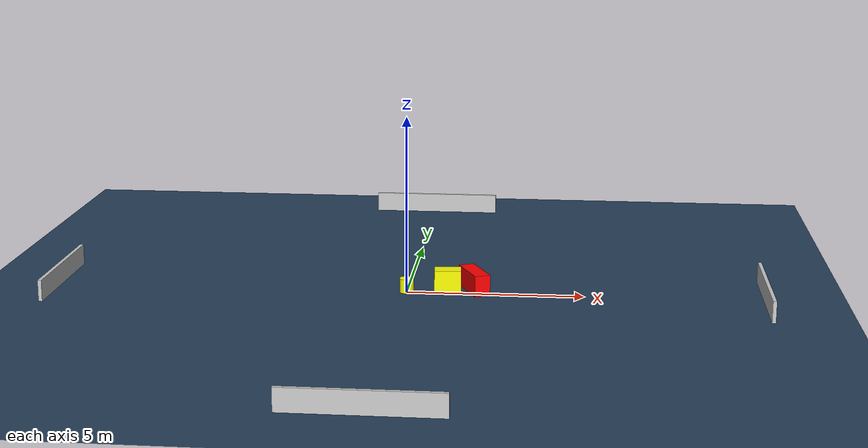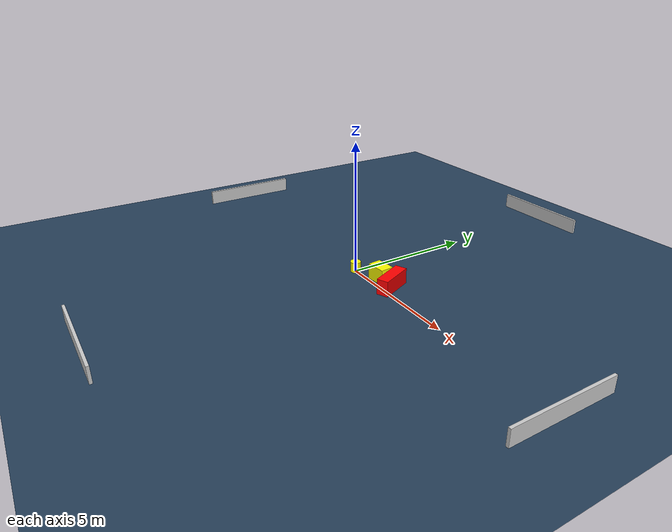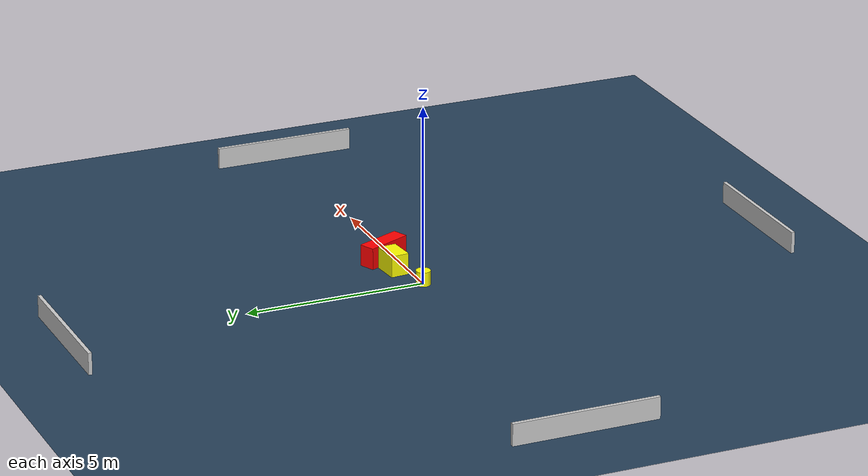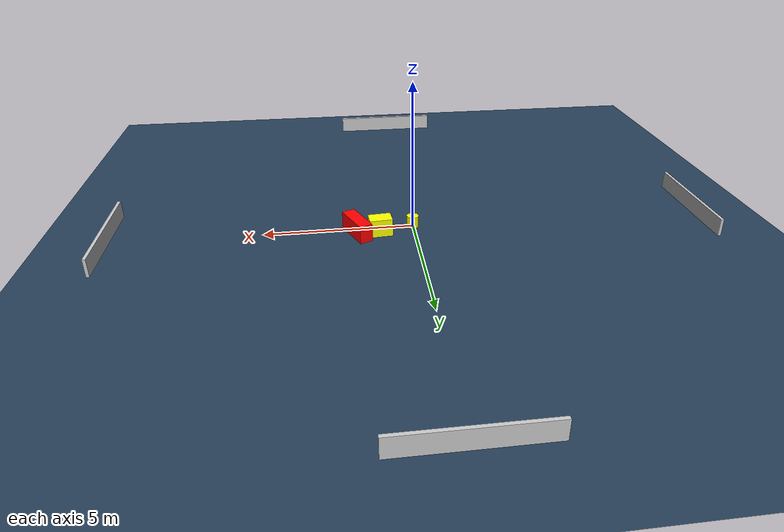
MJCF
<?xml version="1.0" ?>
<mujoco model="generated_environment">
  <option timestep="0.01" integrator="RK4" cone="elliptic"/>
  <default>
    <geom density="1"/>
  </default>
  <asset>
    <texture builtin="gradient" height="3072" name="skybox" rgb1="0.3 0.5 0.7" rgb2="0 0 0" type="skybox" width="512"/>
    <texture builtin="checker" height="300" name="groundplane" rgb1="0.2 0.3 0.4" rgb2="0.1 0.2 0.3" type="2d" width="300"/>
    <material name="groundplane" reflectance="0.2" texrepeat="5 5" texture="groundplane"/>
  </asset>
  <worldbody>
    <light dir="0 0 -1" directional="true" pos="0 0 1.5"/>
    <geom condim="3" friction="0.5 0.005 0.001" material="groundplane" name="floor" pos="0 0 0" size="0 0 0.05" type="plane"/>
    <body name="walls">
      <geom name="wall_1" condim="4" pos="-10.0 0.0 0.3" rgba="0.800000011920929 0.800000011920929 0.800000011920929 1.0" size="0.05 2.0 0.3" type="box"/>
      <geom name="wall_2" condim="4" pos="10.0 0.0 0.3" rgba="0.800000011920929 0.800000011920929 0.800000011920929 1.0" size="0.05 2.0 0.3" type="box"/>
      <geom name="wall_3" condim="4" pos="0.0 -10.0 0.3" rgba="0.800000011920929 0.800000011920929 0.800000011920929 1.0" size="2.0 0.05 0.3" type="box"/>
      <geom name="wall_4" condim="4" pos="0.0 10.0 0.3" rgba="0.800000011920929 0.800000011920929 0.800000011920929 1.0" size="2.0 0.05 0.3" type="box"/>
    </body>
    <body name="robot">
      <joint name="joint_x" type="slide" pos="0 0 0" axis="1 0 0"/>
      <joint name="joint_y" type="slide" pos="0 0 0" axis="0 1 0"/>
      <geom name="robot" type="cylinder" pos="0.0 0.0 0.2" size="0.2 0.2 0.0" mass="5.0" friction="1.0 0.005 0.0001" condim="4" rgba="1.0 1.0 0.0 1.0"/>
    </body>
    <body name="obstacle_1_movable">
      <geom name="obstacle_1_movable" condim="4" pos="1.1345664671395295 0.3751461266851216 0.3" euler="0 0 95.04737752790743" friction="0.0 0.005 0.001" rgba="1.0 1.0 0.0 1.0" size="0.25589717551569346 0.3788034286041366 0.3" type="box" mass="0.1"/>
      <joint type="free"/>
    </body>
    <body name="obstacle_2_static">
      <geom name="obstacle_2_static" condim="4" pos="1.8955033326666928 0.33964460535868213 0.3" euler="0 0 23.88408547178772" friction="0.0 0.005 0.001" rgba="1.0 0.0 0.0 1.0" size="0.22310980489507393 0.6585748332958352 0.3" type="box"/>
    </body>
  </worldbody>
  <actuator>
    <motor name="actuator_x" joint="joint_x" gear="1" ctrlrange="-1 1"/>
    <motor name="actuator_y" joint="joint_y" gear="1" ctrlrange="-1 1"/>
  </actuator>
</mujoco>
